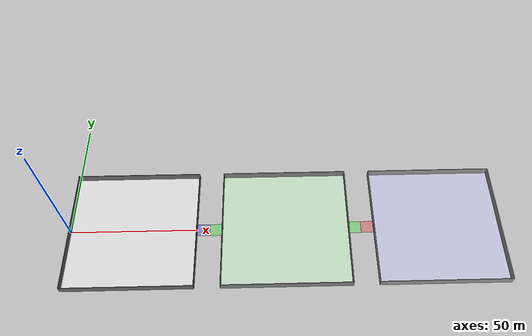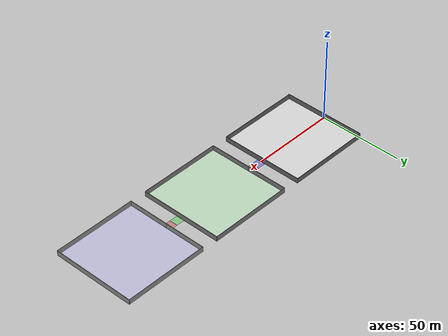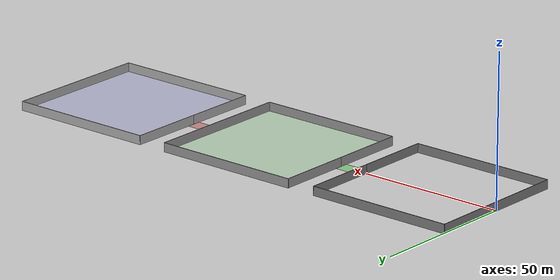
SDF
<?xml version="1.0" ?>
<sdf version="1.9">
  <world name="hotel_multilevel">

    <physics name="1ms" type="ignored">
      <max_step_size>0.001</max_step_size>
      <real_time_factor>1.0</real_time_factor>
    </physics>

    <plugin filename="gz-sim-physics-system" name="gz::sim::systems::Physics"/>
    <plugin filename="gz-sim-sensors-system" name="gz::sim::systems::Sensors">
      <render_engine>ogre2</render_engine>
    </plugin>
    <plugin filename="gz-sim-user-commands-system" name="gz::sim::systems::UserCommands"/>
    <plugin filename="gz-sim-scene-broadcaster-system" name="gz::sim::systems::SceneBroadcaster"/>

    <light type="directional" name="sun">
      <cast_shadows>true</cast_shadows>
      <pose>0 0 10 0 0 0</pose>
      <diffuse>0.8 0.8 0.8 1</diffuse>
      <specular>0.2 0.2 0.2 1</specular>
      <direction>-0.5 0.1 -0.9</direction>
    </light>

    <!-- ========== LEVEL 1 - Lobby Area ========== -->
    <model name="L1_floor">
      <static>true</static>
      <pose>25 0 0 0 0 0</pose>
      <link name="link">
        <collision name="collision">
          <geometry>
            <box><size>50 50 0.1</size></box>
          </geometry>
        </collision>
        <visual name="visual">
          <geometry>
            <box><size>50 50 0.1</size></box>
          </geometry>
          <material>
            <ambient>0.8 0.8 0.8 1</ambient>
            <diffuse>0.8 0.8 0.8 1</diffuse>
          </material>
        </visual>
      </link>
    </model>

    <!-- L1 Perimeter walls -->
    <model name="L1_walls">
      <static>true</static>
      <pose>25 0 1.5 0 0 0</pose>
      <link name="link">
        <collision name="north"><pose>0 25 0 0 0 0</pose><geometry><box><size>50 0.2 3</size></box></geometry></collision>
        <visual name="north_v"><pose>0 25 0 0 0 0</pose><geometry><box><size>50 0.2 3</size></box></geometry><material><ambient>0.5 0.5 0.5 1</ambient></material></visual>

        <collision name="south"><pose>0 -25 0 0 0 0</pose><geometry><box><size>50 0.2 3</size></box></geometry></collision>
        <visual name="south_v"><pose>0 -25 0 0 0 0</pose><geometry><box><size>50 0.2 3</size></box></geometry><material><ambient>0.5 0.5 0.5 1</ambient></material></visual>

        <collision name="west"><pose>-25 0 0 0 0 0</pose><geometry><box><size>0.2 50 3</size></box></geometry></collision>
        <visual name="west_v"><pose>-25 0 0 0 0 0</pose><geometry><box><size>0.2 50 3</size></box></geometry><material><ambient>0.5 0.5 0.5 1</ambient></material></visual>

        <!-- East wall has gap for lift access -->
        <collision name="east_n"><pose>25 12.5 0 0 0 0</pose><geometry><box><size>0.2 25 3</size></box></geometry></collision>
        <visual name="east_n_v"><pose>25 12.5 0 0 0 0</pose><geometry><box><size>0.2 25 3</size></box></geometry><material><ambient>0.5 0.5 0.5 1</ambient></material></visual>

        <collision name="east_s"><pose>25 -12.5 0 0 0 0</pose><geometry><box><size>0.2 25 3</size></box></geometry></collision>
        <visual name="east_s_v"><pose>25 -12.5 0 0 0 0</pose><geometry><box><size>0.2 25 3</size></box></geometry><material><ambient>0.5 0.5 0.5 1</ambient></material></visual>
      </link>
    </model>

    <!-- ========== LEVEL 2 - Rooms Area ========== -->
    <model name="L2_floor">
      <static>true</static>
      <pose>85 0 0 0 0 0</pose>
      <link name="link">
        <collision name="collision">
          <geometry>
            <box><size>50 50 0.1</size></box>
          </geometry>
        </collision>
        <visual name="visual">
          <geometry>
            <box><size>50 50 0.1</size></box>
          </geometry>
          <material>
            <ambient>0.7 0.8 0.7 1</ambient>
            <diffuse>0.7 0.8 0.7 1</diffuse>
          </material>
        </visual>
      </link>
    </model>

    <model name="L2_walls">
      <static>true</static>
      <pose>85 0 1.5 0 0 0</pose>
      <link name="link">
        <collision name="north"><pose>0 25 0 0 0 0</pose><geometry><box><size>50 0.2 3</size></box></geometry></collision>
        <visual name="north_v"><pose>0 25 0 0 0 0</pose><geometry><box><size>50 0.2 3</size></box></geometry><material><ambient>0.6 0.6 0.6 1</ambient></material></visual>

        <collision name="south"><pose>0 -25 0 0 0 0</pose><geometry><box><size>50 0.2 3</size></box></geometry></collision>
        <visual name="south_v"><pose>0 -25 0 0 0 0</pose><geometry><box><size>50 0.2 3</size></box></geometry><material><ambient>0.6 0.6 0.6 1</ambient></material></visual>

        <collision name="east"><pose>25 0 0 0 0 0</pose><geometry><box><size>0.2 50 3</size></box></geometry></collision>
        <visual name="east_v"><pose>25 0 0 0 0 0</pose><geometry><box><size>0.2 50 3</size></box></geometry><material><ambient>0.6 0.6 0.6 1</ambient></material></visual>

        <!-- West wall has gaps for lift access from L1 and to L3 -->
        <collision name="west_n"><pose>-25 12.5 0 0 0 0</pose><geometry><box><size>0.2 25 3</size></box></geometry></collision>
        <visual name="west_n_v"><pose>-25 12.5 0 0 0 0</pose><geometry><box><size>0.2 25 3</size></box></geometry><material><ambient>0.6 0.6 0.6 1</ambient></material></visual>

        <collision name="west_s"><pose>-25 -12.5 0 0 0 0</pose><geometry><box><size>0.2 25 3</size></box></geometry></collision>
        <visual name="west_s_v"><pose>-25 -12.5 0 0 0 0</pose><geometry><box><size>0.2 25 3</size></box></geometry><material><ambient>0.6 0.6 0.6 1</ambient></material></visual>
      </link>
    </model>

    <!-- ========== LEVEL 3 - Suites Area ========== -->
    <model name="L3_floor">
      <static>true</static>
      <pose>145 0 0 0 0 0</pose>
      <link name="link">
        <collision name="collision">
          <geometry>
            <box><size>50 50 0.1</size></box>
          </geometry>
        </collision>
        <visual name="visual">
          <geometry>
            <box><size>50 50 0.1</size></box>
          </geometry>
          <material>
            <ambient>0.7 0.7 0.8 1</ambient>
            <diffuse>0.7 0.7 0.8 1</diffuse>
          </material>
        </visual>
      </link>
    </model>

    <model name="L3_walls">
      <static>true</static>
      <pose>145 0 1.5 0 0 0</pose>
      <link name="link">
        <collision name="north"><pose>0 25 0 0 0 0</pose><geometry><box><size>50 0.2 3</size></box></geometry></collision>
        <visual name="north_v"><pose>0 25 0 0 0 0</pose><geometry><box><size>50 0.2 3</size></box></geometry><material><ambient>0.7 0.7 0.7 1</ambient></material></visual>

        <collision name="south"><pose>0 -25 0 0 0 0</pose><geometry><box><size>50 0.2 3</size></box></geometry></collision>
        <visual name="south_v"><pose>0 -25 0 0 0 0</pose><geometry><box><size>50 0.2 3</size></box></geometry><material><ambient>0.7 0.7 0.7 1</ambient></material></visual>

        <collision name="east"><pose>25 0 0 0 0 0</pose><geometry><box><size>0.2 50 3</size></box></geometry></collision>
        <visual name="east_v"><pose>25 0 0 0 0 0</pose><geometry><box><size>0.2 50 3</size></box></geometry><material><ambient>0.7 0.7 0.7 1</ambient></material></visual>

        <!-- West wall has gap for lift access from L2 -->
        <collision name="west_n"><pose>-25 12.5 0 0 0 0</pose><geometry><box><size>0.2 25 3</size></box></geometry></collision>
        <visual name="west_n_v"><pose>-25 12.5 0 0 0 0</pose><geometry><box><size>0.2 25 3</size></box></geometry><material><ambient>0.7 0.7 0.7 1</ambient></material></visual>

        <collision name="west_s"><pose>-25 -12.5 0 0 0 0</pose><geometry><box><size>0.2 25 3</size></box></geometry></collision>
        <visual name="west_s_v"><pose>-25 -12.5 0 0 0 0</pose><geometry><box><size>0.2 25 3</size></box></geometry><material><ambient>0.7 0.7 0.7 1</ambient></material></visual>
      </link>
    </model>

    <!-- ========== LIFT ZONES (Visual markers) ========== -->
    <!-- Lift zone L1-L2 connection -->
    <model name="lift_zone_L1">
      <static>true</static>
      <pose>52.5 0 0.05 0 0 0</pose>
      <link name="link">
        <visual name="visual">
          <geometry>
            <box><size>5 5 0.02</size></box>
          </geometry>
          <material>
            <ambient>0.3 0.3 0.8 0.5</ambient>
            <diffuse>0.3 0.3 0.8 0.5</diffuse>
            <transparency>0.5</transparency>
          </material>
        </visual>
      </link>
    </model>

    <model name="lift_zone_L2">
      <static>true</static>
      <pose>57.5 0 0.05 0 0 0</pose>
      <link name="link">
        <visual name="visual">
          <geometry>
            <box><size>5 5 0.02</size></box>
          </geometry>
          <material>
            <ambient>0.3 0.8 0.3 0.5</ambient>
            <diffuse>0.3 0.8 0.3 0.5</diffuse>
            <transparency>0.5</transparency>
          </material>
        </visual>
      </link>
    </model>

    <!-- Lift zone L2-L3 connection -->
    <model name="lift_zone_L2_L3">
      <static>true</static>
      <pose>112.5 0 0.05 0 0 0</pose>
      <link name="link">
        <visual name="visual">
          <geometry>
            <box><size>5 5 0.02</size></box>
          </geometry>
          <material>
            <ambient>0.3 0.8 0.3 0.5</ambient>
            <diffuse>0.3 0.8 0.3 0.5</diffuse>
            <transparency>0.5</transparency>
          </material>
        </visual>
      </link>
    </model>

    <model name="lift_zone_L3">
      <static>true</static>
      <pose>117.5 0 0.05 0 0 0</pose>
      <link name="link">
        <visual name="visual">
          <geometry>
            <box><size>5 5 0.02</size></box>
          </geometry>
          <material>
            <ambient>0.8 0.3 0.3 0.5</ambient>
            <diffuse>0.8 0.3 0.3 0.5</diffuse>
            <transparency>0.5</transparency>
          </material>
        </visual>
      </link>
    </model>

  </world>
</sdf>
